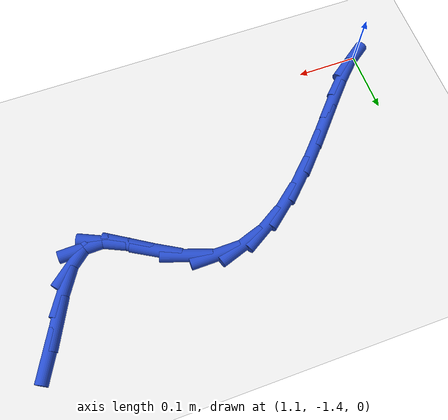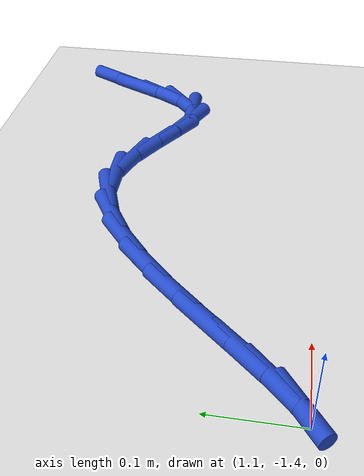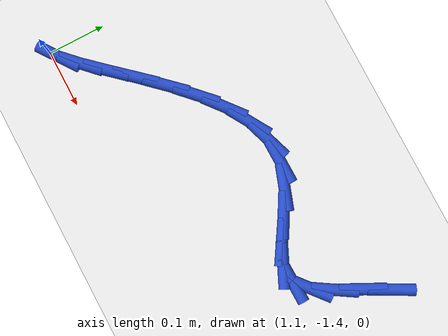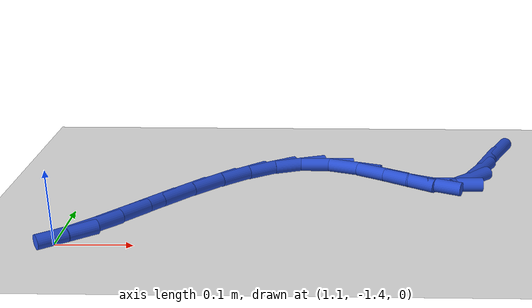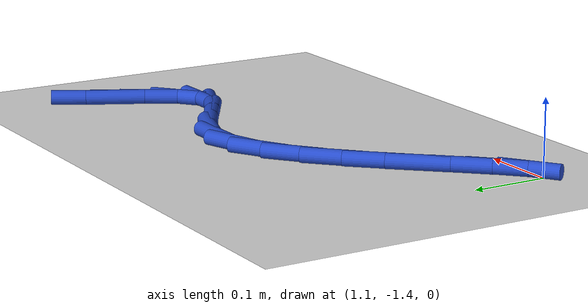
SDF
<sdf version="1.6">
 <world name="default">
  <model name="ground_plane">
   <static>1</static>
   <link name="link">
    <collision name="collision">
     <geometry><plane><normal>0 0 1</normal><size>100 100</size></plane></geometry>
     <surface><friction><ode><mu>100</mu><mu2>50</mu2></ode></friction></surface>
    </collision>
    <visual name="visual">
     <cast_shadows>0</cast_shadows>
     <geometry><plane><normal>0 0 1</normal><size>100 100</size></plane></geometry>
     <material>
      <script><uri>file://media/materials/scripts/gazebo.material</uri><name>Gazebo/WhiteGlow</name></script>
     </material>
    </visual>
   </link>
  </model>
  <model name="line">
   <link name="link_156">
    <pose>1.7166087061313338 -1.0812194686827337 0.01 0 1.57 1.0761156935410725</pose>
    <collision name="collision">
     <geometry><cylinder><radius>0.01</radius><length>0.08</length></cylinder></geometry>
    </collision>
    <visual name="visual">
     <material>
      <script><name>Gazebo/Blue</name><uri>file://media/materials/scripts/gazebo.material</uri></script>
     </material>
     <geometry><cylinder><radius>0.01</radius><length>0.08</length></cylinder></geometry>
    </visual>
   </link>
   <link name="link_157">
    <pose>1.6942582157608472 -1.1226541128641105 0.01 0 1.57 1.1068479089024006</pose>
    <collision name="collision">
     <geometry><cylinder><radius>0.01</radius><length>0.08</length></cylinder></geometry>
    </collision>
    <visual name="visual">
     <material>
      <script><name>Gazebo/Blue</name><uri>file://media/materials/scripts/gazebo.material</uri></script>
     </material>
     <geometry><cylinder><radius>0.01</radius><length>0.08</length></cylinder></geometry>
    </visual>
   </link>
   <link name="link_158">
    <pose>1.6735541340369227 -1.1640311551746665 0.01 0 1.57 1.0147739253650851</pose>
    <collision name="collision">
     <geometry><cylinder><radius>0.01</radius><length>0.08</length></cylinder></geometry>
    </collision>
    <visual name="visual">
     <material>
      <script><name>Gazebo/Blue</name><uri>file://media/materials/scripts/gazebo.material</uri></script>
     </material>
     <geometry><cylinder><radius>0.01</radius><length>0.08</length></cylinder></geometry>
    </visual>
   </link>
   <link name="link_159">
    <pose>1.6522113052184055 -1.198376287470876 0.01 0 1.57 0.6975681951274972</pose>
    <collision name="collision">
     <geometry><cylinder><radius>0.01</radius><length>0.08</length></cylinder></geometry>
    </collision>
    <visual name="visual">
     <material>
      <script><name>Gazebo/Blue</name><uri>file://media/materials/scripts/gazebo.material</uri></script>
     </material>
     <geometry><cylinder><radius>0.01</radius><length>0.08</length></cylinder></geometry>
    </visual>
   </link>
   <link name="link_160">
    <pose>1.6279445735641433 -1.2187152016092138 0.01 0 1.57 0.018392563356587552</pose>
    <collision name="collision">
     <geometry><cylinder><radius>0.01</radius><length>0.08</length></cylinder></geometry>
    </collision>
    <visual name="visual">
     <material>
      <script><name>Gazebo/Blue</name><uri>file://media/materials/scripts/gazebo.material</uri></script>
     </material>
     <geometry><cylinder><radius>0.01</radius><length>0.08</length></cylinder></geometry>
    </visual>
   </link>
   <link name="link_161">
    <pose>1.5987349041847587 -1.219252502892502 0.01 0 1.57 -0.4294672362151128</pose>
    <collision name="collision">
     <geometry><cylinder><radius>0.01</radius><length>0.08</length></cylinder></geometry>
    </collision>
    <visual name="visual">
     <material>
      <script><name>Gazebo/Blue</name><uri>file://media/materials/scripts/gazebo.material</uri></script>
     </material>
     <geometry><cylinder><radius>0.01</radius><length>0.08</length></cylinder></geometry>
    </visual>
   </link>
   <link name="link_162">
    <pose>1.5647017098977902 -1.203666104480327 0.01 0 1.57 -0.5567322808793821</pose>
    <collision name="collision">
     <geometry><cylinder><radius>0.01</radius><length>0.08</length></cylinder></geometry>
    </collision>
    <visual name="visual">
     <material>
      <script><name>Gazebo/Blue</name><uri>file://media/materials/scripts/gazebo.material</uri></script>
     </material>
     <geometry><cylinder><radius>0.01</radius><length>0.08</length></cylinder></geometry>
    </visual>
   </link>
   <link name="link_163">
    <pose>1.526994406960179 -1.180196827310407 0.01 0 1.57 -0.5209459533104207</pose>
    <collision name="collision">
     <geometry><cylinder><radius>0.01</radius><length>0.08</length></cylinder></geometry>
    </collision>
    <visual name="visual">
     <material>
      <script><name>Gazebo/Blue</name><uri>file://media/materials/scripts/gazebo.material</uri></script>
     </material>
     <geometry><cylinder><radius>0.01</radius><length>0.08</length></cylinder></geometry>
    </visual>
   </link>
   <link name="link_164">
    <pose>1.4867690163129121 -1.1571147510229511 0.01 0 1.57 -0.33387095526789967</pose>
    <collision name="collision">
     <geometry><cylinder><radius>0.01</radius><length>0.08</length></cylinder></geometry>
    </collision>
    <visual name="visual">
     <material>
      <script><name>Gazebo/Blue</name><uri>file://media/materials/scripts/gazebo.material</uri></script>
     </material>
     <geometry><cylinder><radius>0.01</radius><length>0.08</length></cylinder></geometry>
    </visual>
   </link>
   <link name="link_165">
    <pose>1.4451815555462195 -1.142689901547566 0.01 0 1.57 0.010861721744335284</pose>
    <collision name="collision">
     <geometry><cylinder><radius>0.01</radius><length>0.08</length></cylinder></geometry>
    </collision>
    <visual name="visual">
     <material>
      <script><name>Gazebo/Blue</name><uri>file://media/materials/scripts/gazebo.material</uri></script>
     </material>
     <geometry><cylinder><radius>0.01</radius><length>0.08</length></cylinder></geometry>
    </visual>
   </link>
   <link name="link_166">
    <pose>1.403260336392971 -1.1431452560724529 0.01 0 1.57 0.32586342932559803</pose>
    <collision name="collision">
     <geometry><cylinder><radius>0.01</radius><length>0.08</length></cylinder></geometry>
    </collision>
    <visual name="visual">
     <material>
      <script><name>Gazebo/Blue</name><uri>file://media/materials/scripts/gazebo.material</uri></script>
     </material>
     <geometry><cylinder><radius>0.01</radius><length>0.08</length></cylinder></geometry>
    </visual>
   </link>
   <link name="link_167">
    <pose>1.3615676408932524 -1.1572336137078365 0.01 0 1.57 0.5433858321964073</pose>
    <collision name="collision">
     <geometry><cylinder><radius>0.01</radius><length>0.08</length></cylinder></geometry>
    </collision>
    <visual name="visual">
     <material>
      <script><name>Gazebo/Blue</name><uri>file://media/materials/scripts/gazebo.material</uri></script>
     </material>
     <geometry><cylinder><radius>0.01</radius><length>0.08</length></cylinder></geometry>
    </visual>
   </link>
   <link name="link_168">
    <pose>1.3205594757844865 -1.1820042438351557 0.01 0 1.57 0.6839721279006475</pose>
    <collision name="collision">
     <geometry><cylinder><radius>0.01</radius><length>0.08</length></cylinder></geometry>
    </collision>
    <visual name="visual">
     <material>
      <script><name>Gazebo/Blue</name><uri>file://media/materials/scripts/gazebo.material</uri></script>
     </material>
     <geometry><cylinder><radius>0.01</radius><length>0.08</length></cylinder></geometry>
    </visual>
   </link>
   <link name="link_169">
    <pose>1.280691847804097 -1.2145064158358503 0.01 0 1.57 0.7723208458454639</pose>
    <collision name="collision">
     <geometry><cylinder><radius>0.01</radius><length>0.08</length></cylinder></geometry>
    </collision>
    <visual name="visual">
     <material>
      <script><name>Gazebo/Blue</name><uri>file://media/materials/scripts/gazebo.material</uri></script>
     </material>
     <geometry><cylinder><radius>0.01</radius><length>0.08</length></cylinder></geometry>
    </visual>
   </link>
   <link name="link_170">
    <pose>1.2424207636895055 -1.2517893990913607 0.01 0 1.57 0.8238031256295153</pose>
    <collision name="collision">
     <geometry><cylinder><radius>0.01</radius><length>0.08</length></cylinder></geometry>
    </collision>
    <visual name="visual">
     <material>
      <script><name>Gazebo/Blue</name><uri>file://media/materials/scripts/gazebo.material</uri></script>
     </material>
     <geometry><cylinder><radius>0.01</radius><length>0.08</length></cylinder></geometry>
    </visual>
   </link>
   <link name="link_171">
    <pose>1.2062022301781388 -1.2909024629831245 0.01 0 1.57 0.8450524740589686</pose>
    <collision name="collision">
     <geometry><cylinder><radius>0.01</radius><length>0.08</length></cylinder></geometry>
    </collision>
    <visual name="visual">
     <material>
      <script><name>Gazebo/Blue</name><uri>file://media/materials/scripts/gazebo.material</uri></script>
     </material>
     <geometry><cylinder><radius>0.01</radius><length>0.08</length></cylinder></geometry>
    </visual>
   </link>
   <link name="link_172">
    <pose>1.1724922540074183 -1.3288948768925823 0.01 0 1.57 0.8344664575026066</pose>
    <collision name="collision">
     <geometry><cylinder><radius>0.01</radius><length>0.08</length></cylinder></geometry>
    </collision>
    <visual name="visual">
     <material>
      <script><name>Gazebo/Blue</name><uri>file://media/materials/scripts/gazebo.material</uri></script>
     </material>
     <geometry><cylinder><radius>0.01</radius><length>0.08</length></cylinder></geometry>
    </visual>
   </link>
   <link name="link_173">
    <pose>1.1417468419147685 -1.3628159102011734 0.01 0 1.57 0.7775434812002061</pose>
    <collision name="collision">
     <geometry><cylinder><radius>0.01</radius><length>0.08</length></cylinder></geometry>
    </collision>
    <visual name="visual">
     <material>
      <script><name>Gazebo/Blue</name><uri>file://media/materials/scripts/gazebo.material</uri></script>
     </material>
     <geometry><cylinder><radius>0.01</radius><length>0.08</length></cylinder></geometry>
    </visual>
   </link>
   <link name="link_174">
    <pose>1.1144220006376124 -1.3897148322903379 0.01 0 1.57 0.6252390007220262</pose>
    <collision name="collision">
     <geometry><cylinder><radius>0.01</radius><length>0.08</length></cylinder></geometry>
    </collision>
    <visual name="visual">
     <material>
      <script><name>Gazebo/Blue</name><uri>file://media/materials/scripts/gazebo.material</uri></script>
     </material>
     <geometry><cylinder><radius>0.01</radius><length>0.08</length></cylinder></geometry>
    </visual>
   </link>
  </model>
 </world>
</sdf>
